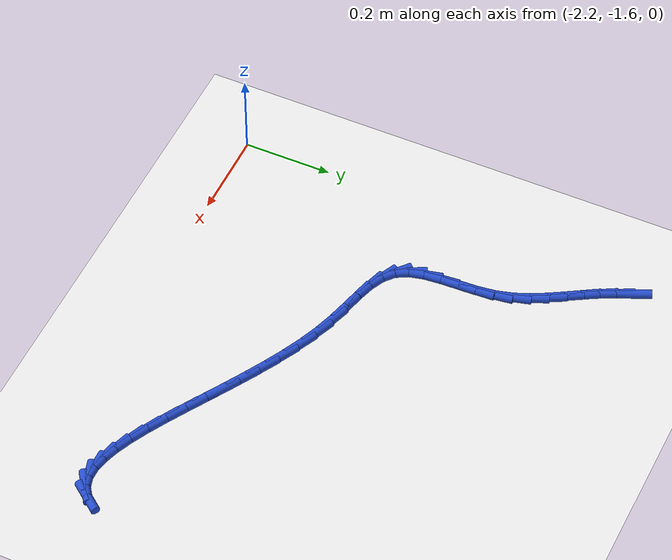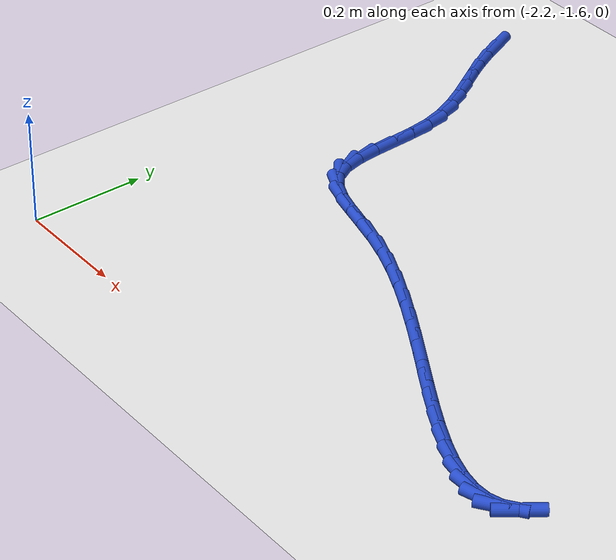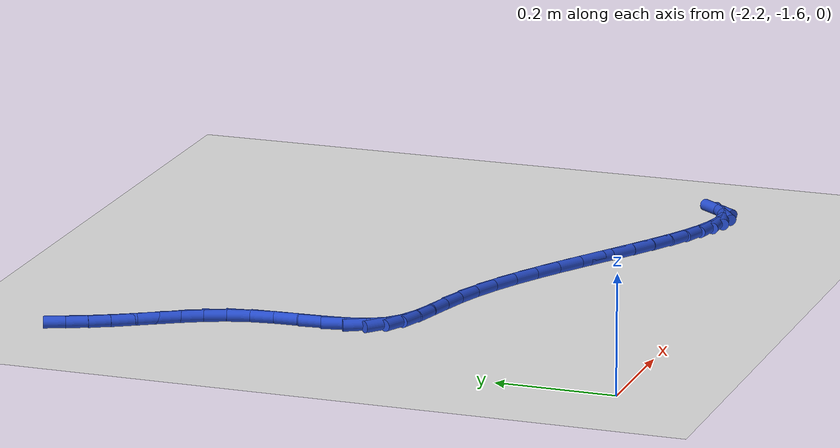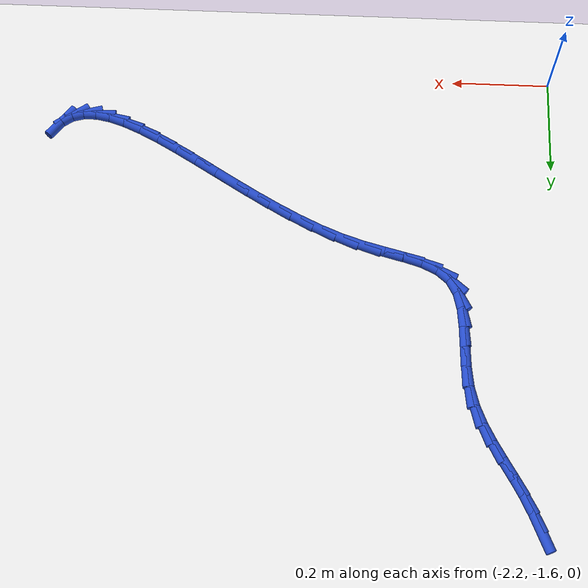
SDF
<sdf version="1.6">
 <world name="default">
  <model name="ground_plane">
   <static>1</static>
   <link name="link">
    <collision name="collision">
     <geometry><plane><normal>0 0 1</normal><size>100 100</size></plane></geometry>
     <surface><friction><ode><mu>100</mu><mu2>50</mu2></ode></friction></surface>
    </collision>
    <visual name="visual">
     <cast_shadows>0</cast_shadows>
     <geometry><plane><normal>0 0 1</normal><size>100 100</size></plane></geometry>
     <material>
      <script><uri>file://media/materials/scripts/gazebo.material</uri><name>Gazebo/WhiteGlow</name></script>
     </material>
    </visual>
   </link>
  </model>
  <model name="line">
   <link name="link_128">
    <pose>-2.153018015874847 -0.6545935044257313 0.01 0 1.57 -1.1680046048767039</pose>
    <collision name="collision">
     <geometry><cylinder><radius>0.01</radius><length>0.08</length></cylinder></geometry>
    </collision>
    <visual name="visual">
     <material>
      <script><name>Gazebo/Blue</name><uri>file://media/materials/scripts/gazebo.material</uri></script>
     </material>
     <geometry><cylinder><radius>0.01</radius><length>0.08</length></cylinder></geometry>
    </visual>
   </link>
   <link name="link_129">
    <pose>-2.1389334380475242 -0.6876490754202438 0.01 0 1.57 -1.1176053666232557</pose>
    <collision name="collision">
     <geometry><cylinder><radius>0.01</radius><length>0.08</length></cylinder></geometry>
    </collision>
    <visual name="visual">
     <material>
      <script><name>Gazebo/Blue</name><uri>file://media/materials/scripts/gazebo.material</uri></script>
     </material>
     <geometry><cylinder><radius>0.01</radius><length>0.08</length></cylinder></geometry>
    </visual>
   </link>
   <link name="link_130">
    <pose>-2.1230809310267102 -0.7202006450811956 0.01 0 1.57 -1.0659489934735233</pose>
    <collision name="collision">
     <geometry><cylinder><radius>0.01</radius><length>0.08</length></cylinder></geometry>
    </collision>
    <visual name="visual">
     <material>
      <script><name>Gazebo/Blue</name><uri>file://media/materials/scripts/gazebo.material</uri></script>
     </material>
     <geometry><cylinder><radius>0.01</radius><length>0.08</length></cylinder></geometry>
    </visual>
   </link>
   <link name="link_131">
    <pose>-2.105368966353822 -0.752251929706147 0.01 0 1.57 -1.033960128867715</pose>
    <collision name="collision">
     <geometry><cylinder><radius>0.01</radius><length>0.08</length></cylinder></geometry>
    </collision>
    <visual name="visual">
     <material>
      <script><name>Gazebo/Blue</name><uri>file://media/materials/scripts/gazebo.material</uri></script>
     </material>
     <geometry><cylinder><radius>0.01</radius><length>0.08</length></cylinder></geometry>
    </visual>
   </link>
   <link name="link_132">
    <pose>-2.086406496624533 -0.7841142826959975 0.01 0 1.57 -1.0429254036376472</pose>
    <collision name="collision">
     <geometry><cylinder><radius>0.01</radius><length>0.08</length></cylinder></geometry>
    </collision>
    <visual name="visual">
     <material>
      <script><name>Gazebo/Blue</name><uri>file://media/materials/scripts/gazebo.material</uri></script>
     </material>
     <geometry><cylinder><radius>0.01</radius><length>0.08</length></cylinder></geometry>
    </visual>
   </link>
   <link name="link_133">
    <pose>-2.067562752053534 -0.8164329559961276 0.01 0 1.57 -1.092916642152559</pose>
    <collision name="collision">
     <geometry><cylinder><radius>0.01</radius><length>0.08</length></cylinder></geometry>
    </collision>
    <visual name="visual">
     <material>
      <script><name>Gazebo/Blue</name><uri>file://media/materials/scripts/gazebo.material</uri></script>
     </material>
     <geometry><cylinder><radius>0.01</radius><length>0.08</length></cylinder></geometry>
    </visual>
   </link>
   <link name="link_134">
    <pose>-2.0502451027794244 -0.8498699518346579 0.01 0 1.57 -1.1830348076666632</pose>
    <collision name="collision">
     <geometry><cylinder><radius>0.01</radius><length>0.08</length></cylinder></geometry>
    </collision>
    <visual name="visual">
     <material>
      <script><name>Gazebo/Blue</name><uri>file://media/materials/scripts/gazebo.material</uri></script>
     </material>
     <geometry><cylinder><radius>0.01</radius><length>0.08</length></cylinder></geometry>
    </visual>
   </link>
   <link name="link_135">
    <pose>-2.0358609189408083 -0.8850872724397104 0.01 0 1.57 -1.3101699972998422</pose>
    <collision name="collision">
     <geometry><cylinder><radius>0.01</radius><length>0.08</length></cylinder></geometry>
    </collision>
    <visual name="visual">
     <material>
      <script><name>Gazebo/Blue</name><uri>file://media/materials/scripts/gazebo.material</uri></script>
     </material>
     <geometry><cylinder><radius>0.01</radius><length>0.08</length></cylinder></geometry>
    </visual>
   </link>
   <link name="link_136">
    <pose>-2.025817408601669 -0.9227468152250876 0.01 0 1.57 -1.445402480916084</pose>
    <collision name="collision">
     <geometry><cylinder><radius>0.01</radius><length>0.08</length></cylinder></geometry>
    </collision>
    <visual name="visual">
     <material>
      <script><name>Gazebo/Blue</name><uri>file://media/materials/scripts/gazebo.material</uri></script>
     </material>
     <geometry><cylinder><radius>0.01</radius><length>0.08</length></cylinder></geometry>
    </visual>
   </link>
   <link name="link_137">
    <pose>-2.0207424661245743 -0.9630064922559392 0.01 0 1.57 -1.5209872679867773</pose>
    <collision name="collision">
     <geometry><cylinder><radius>0.01</radius><length>0.08</length></cylinder></geometry>
    </collision>
    <visual name="visual">
     <material>
      <script><name>Gazebo/Blue</name><uri>file://media/materials/scripts/gazebo.material</uri></script>
     </material>
     <geometry><cylinder><radius>0.01</radius><length>0.08</length></cylinder></geometry>
    </visual>
   </link>
   <link name="link_138">
    <pose>-2.0186812822995255 -1.0043539706650673 0.01 0 1.57 -1.532947292665434</pose>
    <collision name="collision">
     <geometry><cylinder><radius>0.01</radius><length>0.08</length></cylinder></geometry>
    </collision>
    <visual name="visual">
     <material>
      <script><name>Gazebo/Blue</name><uri>file://media/materials/scripts/gazebo.material</uri></script>
     </material>
     <geometry><cylinder><radius>0.01</radius><length>0.08</length></cylinder></geometry>
    </visual>
   </link>
   <link name="link_139">
    <pose>-2.0171447329805137 -1.0449313739372839 0.01 0 1.57 -1.4788014039344737</pose>
    <collision name="collision">
     <geometry><cylinder><radius>0.01</radius><length>0.08</length></cylinder></geometry>
    </collision>
    <visual name="visual">
     <material>
      <script><name>Gazebo/Blue</name><uri>file://media/materials/scripts/gazebo.material</uri></script>
     </material>
     <geometry><cylinder><radius>0.01</radius><length>0.08</length></cylinder></geometry>
    </visual>
   </link>
   <link name="link_140">
    <pose>-2.0136436940215314 -1.0828808255573992 0.01 0 1.57 -1.3374173293611702</pose>
    <collision name="collision">
     <geometry><cylinder><radius>0.01</radius><length>0.08</length></cylinder></geometry>
    </collision>
    <visual name="visual">
     <material>
      <script><name>Gazebo/Blue</name><uri>file://media/materials/scripts/gazebo.material</uri></script>
     </material>
     <geometry><cylinder><radius>0.01</radius><length>0.08</length></cylinder></geometry>
    </visual>
   </link>
   <link name="link_141">
    <pose>-2.005689041276571 -1.116344449010225 0.01 0 1.57 -1.0685648151294544</pose>
    <collision name="collision">
     <geometry><cylinder><radius>0.01</radius><length>0.08</length></cylinder></geometry>
    </collision>
    <visual name="visual">
     <material>
      <script><name>Gazebo/Blue</name><uri>file://media/materials/scripts/gazebo.material</uri></script>
     </material>
     <geometry><cylinder><radius>0.01</radius><length>0.08</length></cylinder></geometry>
    </visual>
   </link>
   <link name="link_142">
    <pose>-1.9907936089900913 -1.1434663291228666 0.01 0 1.57 -0.7070653993931819</pose>
    <collision name="collision">
     <geometry><cylinder><radius>0.01</radius><length>0.08</length></cylinder></geometry>
    </collision>
    <visual name="visual">
     <material>
      <script><name>Gazebo/Blue</name><uri>file://media/materials/scripts/gazebo.material</uri></script>
     </material>
     <geometry><cylinder><radius>0.01</radius><length>0.08</length></cylinder></geometry>
    </visual>
   </link>
   <link name="link_143">
    <pose>-1.9674716704184927 -1.1633934991752108 0.01 0 1.57 -0.44283976060930147</pose>
    <collision name="collision">
     <geometry><cylinder><radius>0.01</radius><length>0.08</length></cylinder></geometry>
    </collision>
    <visual name="visual">
     <material>
      <script><name>Gazebo/Blue</name><uri>file://media/materials/scripts/gazebo.material</uri></script>
     </material>
     <geometry><cylinder><radius>0.01</radius><length>0.08</length></cylinder></geometry>
    </visual>
   </link>
   <link name="link_144">
    <pose>-1.9368679755160734 -1.1779074339885354 0.01 0 1.57 -0.30191647068231325</pose>
    <collision name="collision">
     <geometry><cylinder><radius>0.01</radius><length>0.08</length></cylinder></geometry>
    </collision>
    <visual name="visual">
     <material>
      <script><name>Gazebo/Blue</name><uri>file://media/materials/scripts/gazebo.material</uri></script>
     </material>
     <geometry><cylinder><radius>0.01</radius><length>0.08</length></cylinder></geometry>
    </visual>
   </link>
   <link name="link_145">
    <pose>-1.9005539886351146 -1.1892169659567082 0.01 0 1.57 -0.24964402091874288</pose>
    <collision name="collision">
     <geometry><cylinder><radius>0.01</radius><length>0.08</length></cylinder></geometry>
    </collision>
    <visual name="visual">
     <material>
      <script><name>Gazebo/Blue</name><uri>file://media/materials/scripts/gazebo.material</uri></script>
     </material>
     <geometry><cylinder><radius>0.01</radius><length>0.08</length></cylinder></geometry>
    </visual>
   </link>
   <link name="link_146">
    <pose>-1.860101174127901 -1.1995309274735966 0.01 0 1.57 -0.2617994217353292</pose>
    <collision name="collision">
     <geometry><cylinder><radius>0.01</radius><length>0.08</length></cylinder></geometry>
    </collision>
    <visual name="visual">
     <material>
      <script><name>Gazebo/Blue</name><uri>file://media/materials/scripts/gazebo.material</uri></script>
     </material>
     <geometry><cylinder><radius>0.01</radius><length>0.08</length></cylinder></geometry>
    </visual>
   </link>
   <link name="link_147">
    <pose>-1.817080996346714 -1.2110581509330685 0.01 0 1.57 -0.32425498025011396</pose>
    <collision name="collision">
     <geometry><cylinder><radius>0.01</radius><length>0.08</length></cylinder></geometry>
    </collision>
    <visual name="visual">
     <material>
      <script><name>Gazebo/Blue</name><uri>file://media/materials/scripts/gazebo.material</uri></script>
     </material>
     <geometry><cylinder><radius>0.01</radius><length>0.08</length></cylinder></geometry>
    </visual>
   </link>
   <link name="link_148">
    <pose>-1.773004087117508 -1.2258732093555766 0.01 0 1.57 -0.3952149743595993</pose>
    <collision name="collision">
     <geometry><cylinder><radius>0.01</radius><length>0.08</length></cylinder></geometry>
    </collision>
    <visual name="visual">
     <material>
      <script><name>Gazebo/Blue</name><uri>file://media/materials/scripts/gazebo.material</uri></script>
     </material>
     <geometry><cylinder><radius>0.01</radius><length>0.08</length></cylinder></geometry>
    </visual>
   </link>
   <link name="link_149">
    <pose>-1.7286267487981006 -1.2443858459763304 0.01 0 1.57 -0.45057362190198536</pose>
    <collision name="collision">
     <geometry><cylinder><radius>0.01</radius><length>0.08</length></cylinder></geometry>
    </collision>
    <visual name="visual">
     <material>
      <script><name>Gazebo/Blue</name><uri>file://media/materials/scripts/gazebo.material</uri></script>
     </material>
     <geometry><cylinder><radius>0.01</radius><length>0.08</length></cylinder></geometry>
    </visual>
   </link>
   <link name="link_150">
    <pose>-1.6841952523855641 -1.2658801481512023 0.01 0 1.57 -0.4924062726010629</pose>
    <collision name="collision">
     <geometry><cylinder><radius>0.01</radius><length>0.08</length></cylinder></geometry>
    </collision>
    <visual name="visual">
     <material>
      <script><name>Gazebo/Blue</name><uri>file://media/materials/scripts/gazebo.material</uri></script>
     </material>
     <geometry><cylinder><radius>0.01</radius><length>0.08</length></cylinder></geometry>
    </visual>
   </link>
   <link name="link_151">
    <pose>-1.6399462540635343 -1.289618983028627 0.01 0 1.57 -0.5225896712452062</pose>
    <collision name="collision">
     <geometry><cylinder><radius>0.01</radius><length>0.08</length></cylinder></geometry>
    </collision>
    <visual name="visual">
     <material>
      <script><name>Gazebo/Blue</name><uri>file://media/materials/scripts/gazebo.material</uri></script>
     </material>
     <geometry><cylinder><radius>0.01</radius><length>0.08</length></cylinder></geometry>
    </visual>
   </link>
   <link name="link_152">
    <pose>-1.5961164100156484 -1.3148652177570415 0.01 0 1.57 -0.5423261681155844</pose>
    <collision name="collision">
     <geometry><cylinder><radius>0.01</radius><length>0.08</length></cylinder></geometry>
    </collision>
    <visual name="visual">
     <material>
      <script><name>Gazebo/Blue</name><uri>file://media/materials/scripts/gazebo.material</uri></script>
     </material>
     <geometry><cylinder><radius>0.01</radius><length>0.08</length></cylinder></geometry>
    </visual>
   </link>
   <link name="link_153">
    <pose>-1.5529423764255437 -1.3408817194848797 0.01 0 1.57 -0.5521730577161515</pose>
    <collision name="collision">
     <geometry><cylinder><radius>0.01</radius><length>0.08</length></cylinder></geometry>
    </collision>
    <visual name="visual">
     <material>
      <script><name>Gazebo/Blue</name><uri>file://media/materials/scripts/gazebo.material</uri></script>
     </material>
     <geometry><cylinder><radius>0.01</radius><length>0.08</length></cylinder></geometry>
    </visual>
   </link>
   <link name="link_154">
    <pose>-1.5106608094768557 -1.366931355360577 0.01 0 1.57 -0.5520260179677252</pose>
    <collision name="collision">
     <geometry><cylinder><radius>0.01</radius><length>0.08</length></cylinder></geometry>
    </collision>
    <visual name="visual">
     <material>
      <script><name>Gazebo/Blue</name><uri>file://media/materials/scripts/gazebo.material</uri></script>
     </material>
     <geometry><cylinder><radius>0.01</radius><length>0.08</length></cylinder></geometry>
    </visual>
   </link>
   <link name="link_155">
    <pose>-1.4695083653532217 -1.3922769925325702 0.01 0 1.57 -0.5410200345971428</pose>
    <collision name="collision">
     <geometry><cylinder><radius>0.01</radius><length>0.08</length></cylinder></geometry>
    </collision>
    <visual name="visual">
     <material>
      <script><name>Gazebo/Blue</name><uri>file://media/materials/scripts/gazebo.material</uri></script>
     </material>
     <geometry><cylinder><radius>0.01</radius><length>0.08</length></cylinder></geometry>
    </visual>
   </link>
   <link name="link_156">
    <pose>-1.4297217002382772 -1.4161814981492948 0.01 0 1.57 -0.5173018440966658</pose>
    <collision name="collision">
     <geometry><cylinder><radius>0.01</radius><length>0.08</length></cylinder></geometry>
    </collision>
    <visual name="visual">
     <material>
      <script><name>Gazebo/Blue</name><uri>file://media/materials/scripts/gazebo.material</uri></script>
     </material>
     <geometry><cylinder><radius>0.01</radius><length>0.08</length></cylinder></geometry>
    </visual>
   </link>
   <link name="link_157">
    <pose>-1.3915374703156602 -1.4379077393591848 0.01 0 1.57 -0.4775978921312509</pose>
    <collision name="collision">
     <geometry><cylinder><radius>0.01</radius><length>0.08</length></cylinder></geometry>
    </collision>
    <visual name="visual">
     <material>
      <script><name>Gazebo/Blue</name><uri>file://media/materials/scripts/gazebo.material</uri></script>
     </material>
     <geometry><cylinder><radius>0.01</radius><length>0.08</length></cylinder></geometry>
    </visual>
   </link>
   <link name="link_158">
    <pose>-1.3551923317690067 -1.4567185833106762 0.01 0 1.57 -0.41645566694868535</pose>
    <collision name="collision">
     <geometry><cylinder><radius>0.01</radius><length>0.08</length></cylinder></geometry>
    </collision>
    <visual name="visual">
     <material>
      <script><name>Gazebo/Blue</name><uri>file://media/materials/scripts/gazebo.material</uri></script>
     </material>
     <geometry><cylinder><radius>0.01</radius><length>0.08</length></cylinder></geometry>
    </visual>
   </link>
   <link name="link_159">
    <pose>-1.3209229407819532 -1.4718768971522052 0.01 0 1.57 -0.3250229232848995</pose>
    <collision name="collision">
     <geometry><cylinder><radius>0.01</radius><length>0.08</length></cylinder></geometry>
    </collision>
    <visual name="visual">
     <material>
      <script><name>Gazebo/Blue</name><uri>file://media/materials/scripts/gazebo.material</uri></script>
     </material>
     <geometry><cylinder><radius>0.01</radius><length>0.08</length></cylinder></geometry>
    </visual>
   </link>
   <link name="link_160">
    <pose>-1.288965953538135 -1.4826455480322067 0.01 0 1.57 -0.18954505128576596</pose>
    <collision name="collision">
     <geometry><cylinder><radius>0.01</radius><length>0.08</length></cylinder></geometry>
    </collision>
    <visual name="visual">
     <material>
      <script><name>Gazebo/Blue</name><uri>file://media/materials/scripts/gazebo.material</uri></script>
     </material>
     <geometry><cylinder><radius>0.01</radius><length>0.08</length></cylinder></geometry>
    </visual>
   </link>
   <link name="link_161">
    <pose>-1.2595580262211914 -1.4882874030991164 0.01 0 1.57 0.008341472665872549</pose>
    <collision name="collision">
     <geometry><cylinder><radius>0.01</radius><length>0.08</length></cylinder></geometry>
    </collision>
    <visual name="visual">
     <material>
      <script><name>Gazebo/Blue</name><uri>file://media/materials/scripts/gazebo.material</uri></script>
     </material>
     <geometry><cylinder><radius>0.01</radius><length>0.08</length></cylinder></geometry>
    </visual>
   </link>
   <link name="link_162">
    <pose>-1.2329358150147574 -1.4880653295013697 0.01 0 1.57 0.28144353035944175</pose>
    <collision name="collision">
     <geometry><cylinder><radius>0.01</radius><length>0.08</length></cylinder></geometry>
    </collision>
    <visual name="visual">
     <material>
      <script><name>Gazebo/Blue</name><uri>file://media/materials/scripts/gazebo.material</uri></script>
     </material>
     <geometry><cylinder><radius>0.01</radius><length>0.08</length></cylinder></geometry>
    </visual>
   </link>
   <link name="link_163">
    <pose>-1.2093359761024691 -1.481242194387402 0.01 0 1.57 0.608172969227038</pose>
    <collision name="collision">
     <geometry><cylinder><radius>0.01</radius><length>0.08</length></cylinder></geometry>
    </collision>
    <visual name="visual">
     <material>
      <script><name>Gazebo/Blue</name><uri>file://media/materials/scripts/gazebo.material</uri></script>
     </material>
     <geometry><cylinder><radius>0.01</radius><length>0.08</length></cylinder></geometry>
    </visual>
   </link>
   <link name="link_164">
    <pose>-1.188995165667964 -1.4670808649056486 0.01 0 1.57 0.9224879467845599</pose>
    <collision name="collision">
     <geometry><cylinder><radius>0.01</radius><length>0.08</length></cylinder></geometry>
    </collision>
    <visual name="visual">
     <material>
      <script><name>Gazebo/Blue</name><uri>file://media/materials/scripts/gazebo.material</uri></script>
     </material>
     <geometry><cylinder><radius>0.01</radius><length>0.08</length></cylinder></geometry>
    </visual>
   </link>
  </model>
 </world>
</sdf>
